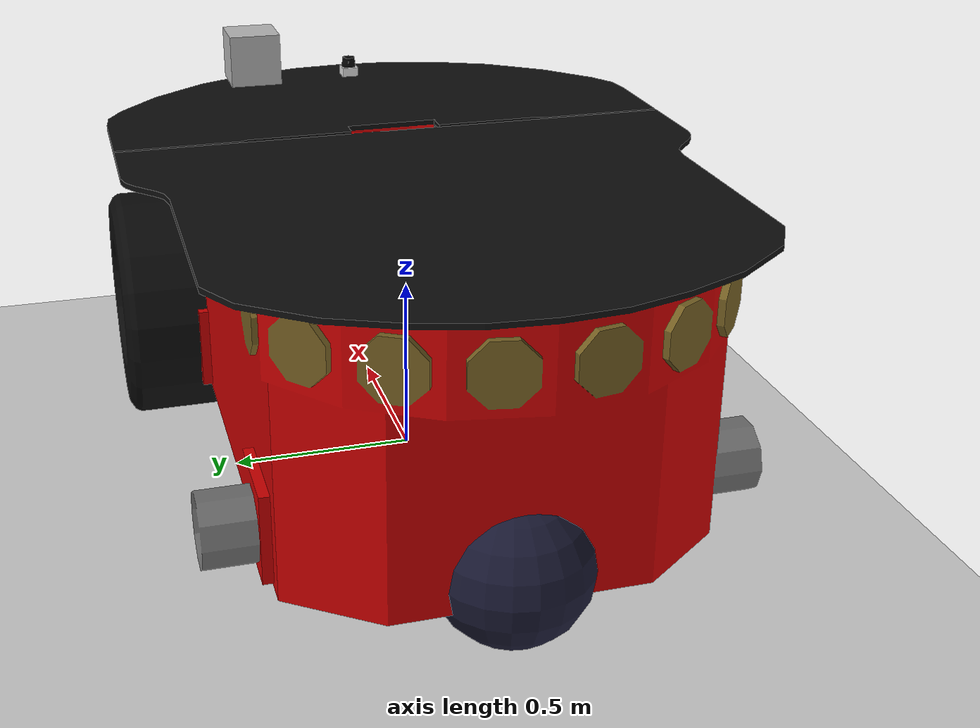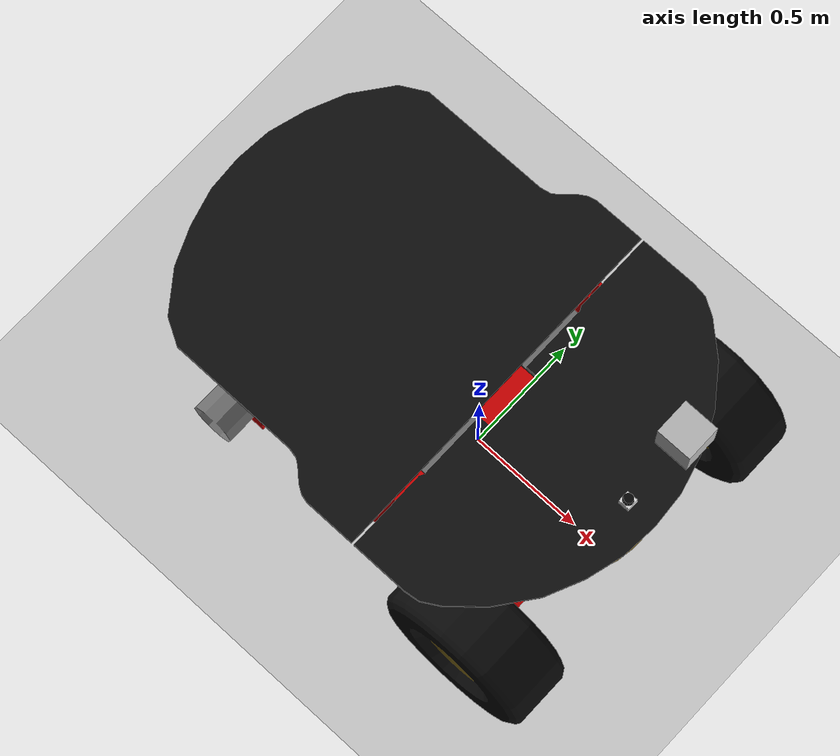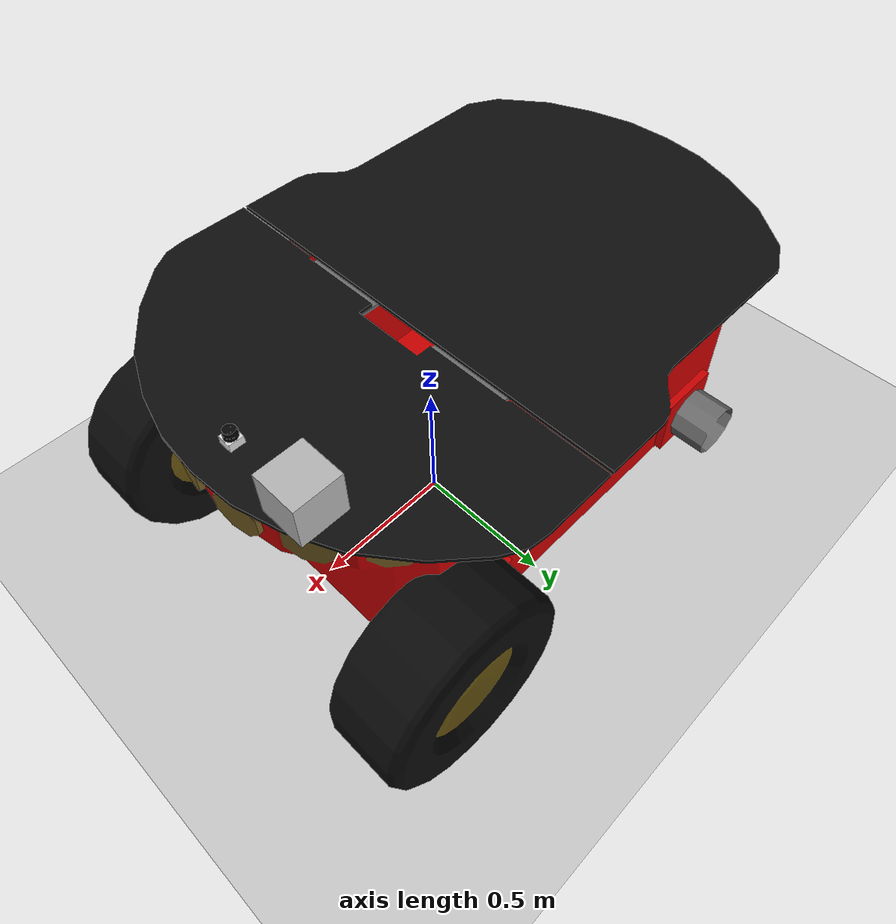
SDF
<?xml version="1.0"?>
<sdf version="1.6">
  <world name="default">

    <include>
      <uri>model://ground_plane</uri>
    </include>

    <include>
      <uri>model://sun</uri>
    </include>

    <model name='vehicle'>
      <pose>0 0 0.325 0 -0 0</pose>

      <link name='chassis'>
        <pose>-0.2 -0 0.2 0 -0 0</pose>
        <inertial>
          <mass>1.14395</mass>
          <inertia>
            <ixx>0.126164</ixx>
            <ixy>0</ixy>
            <ixz>0</ixz>
            <iyy>0.416519</iyy>
            <iyz>0</iyz>
            <izz>0.481014</izz>
          </inertia>
        </inertial>
        <visual name='visual'>
          <geometry>
            <mesh>
              <uri>model://pioneer3at/meshes/chassis.dae</uri>
              <scale>4 4 4</scale>
              <pose>0 0 7</pose>
            </mesh>
          </geometry>
        </visual>
        <collision name='collision'>
          <geometry>
            <box>
              <size>2.01142 1 0.568726</size>
            </box>
          </geometry>
        </collision>
      </link>

      <link name='left_wheel'>
        <pose>0.554283 0.625029 -0.025 -1.5707 0 0</pose>
        <inertial>
          <mass>2</mass>
          <inertia>
            <ixx>0.145833</ixx>
            <ixy>0</ixy>
            <ixz>0</ixz>
            <iyy>0.145833</iyy>
            <iyz>0</iyz>
            <izz>0.125</izz>
          </inertia>
        </inertial>
        <visual name='visual'>
          <geometry>
            <mesh>
              <uri>model://pioneer3at/meshes/wheel.dae</uri>
              <scale>3 3 3</scale>
            </mesh>
          </geometry>
        </visual>
        <collision name='collision'>
          <geometry>
            <sphere>
              <radius>0.3</radius>
            </sphere>
          </geometry>
          <surface>
            <friction>
              <ode>
                <mu>1</mu>
                <mu2>1</mu2>
                <slip1>0</slip1>
                <slip2>0</slip2>
              </ode>
            </friction>
            <contact>
              <ode>
                <soft_cfm>0</soft_cfm>
                <soft_erp>0.2</soft_erp>
                <kp>1e+13</kp>
                <kd>1</kd>
                <max_vel>0.01</max_vel>
                <min_depth>0.01</min_depth>
              </ode>
            </contact>
          </surface>
        </collision>
      </link>

      <link name='right_wheel'>
        <pose>0.554282 -0.625029 -0.025 -1.5707 0 0</pose>
        <inertial>
          <mass>2</mass>
          <inertia>
            <ixx>0.145833</ixx>
            <ixy>0</ixy>
            <ixz>0</ixz>
            <iyy>0.145833</iyy>
            <iyz>0</iyz>
            <izz>0.125</izz>
          </inertia>
        </inertial>
        <visual name='visual'>
          <geometry>
            <mesh>
              <uri>model://pioneer3at/meshes/wheel.dae</uri>
              <scale>3 3 3</scale>
            </mesh>
          </geometry>
        </visual>
        <collision name='collision'>
          <geometry>
            <sphere>
              <radius>0.3</radius>
            </sphere>
          </geometry>
          <surface>
            <friction>
              <ode>
                <mu>1</mu>
                <mu2>1</mu2>
                <slip1>0</slip1>
                <slip2>0</slip2>
              </ode>
            </friction>
            <contact>
              <ode>
                <soft_cfm>0</soft_cfm>
                <soft_erp>0.2</soft_erp>
                <kp>1e+13</kp>
                <kd>1</kd>
                <max_vel>0.01</max_vel>
                <min_depth>0.01</min_depth>
              </ode>
            </contact>
          </surface>
        </collision>
      </link>

      <link name='caster'>
        <pose>-0.957138 -0 -0.125 0 -0 0</pose>
        <inertial>
          <mass>1</mass>
          <inertia>
            <ixx>0.1</ixx>
            <ixy>0</ixy>
            <ixz>0</ixz>
            <iyy>0.1</iyy>
            <iyz>0</iyz>
            <izz>0.1</izz>
          </inertia>
        </inertial>
        <visual name='visual'>
         <material> <!-- Wheel material -->
          <ambient>0.1 0.1 0.1 1</ambient>
          <diffuse>0.1 0.1 0.2 1</diffuse>
          <specular>0 0 0 0</specular>
          <emissive>0 0 0 1</emissive>
        </material> <!-- End wheel material -->
          <geometry>
            <sphere>
              <radius>0.2</radius>
            </sphere>
          </geometry>
        </visual>
        <collision name='collision'>
          <geometry>
            <sphere>
              <radius>0.2</radius>
            </sphere>
          </geometry>
        </collision>
      </link>

      <!-- Add the laser range finder -->
            <link name="laser_link">
              <inertial>
                <!-- Mass of the laser range finder in kg -->
                <mass>0.1</mass>
              </inertial>
              <!-- Position is towards the front of the robot -->
              <!-- Laser finder is mounted on top -->
              <pose>0.7 0 0.62 0 0 0</pose>

              <!-- Add a mesh to make it more visually appealing -->
              <visual name="visual">
                <geometry>
                  <mesh>
                    <uri>model://hokuyo/meshes/hokuyo.dae</uri>
                  </mesh>
                </geometry>
              </visual>

              <!-- Collision properties of the base of the laser range finder-->
              <collision name="collision-base">
                <pose>0 0 -0.0145 0 0 0</pose>
                <geometry>
                  <box>
                    <size>0.05 0.05 0.041</size>
                  </box>
                </geometry>
              </collision>
              <!-- Collision properties of the top of the laser range finder-->
              <collision name="collision-top">
                <pose>0 0 0.0205 0 0 0</pose>
                <geometry>
                  <cylinder>
                    <radius>0.021</radius>
                    <length>0.029</length>
                  </cylinder>
                </geometry>
              </collision>

              <!-- Describes the type and properties of the sensor -->
        <sensor name="laser" type="ray">
          <pose>0.01 0 0.0175 0 -0 0</pose>
                <ray>
                  <scan>
                    <horizontal>
                      <samples>181</samples>
                      <resolution>1</resolution>
                      <min_angle>-1.57080</min_angle>
                      <max_angle>1.57080</max_angle>
                    </horizontal>
                  </scan>
                  <range>
                    <min>0.08</min>
                    <max>10</max>
                    <resolution>0.05</resolution>
                  </range>
                </ray>
                <always_on>1</always_on>
                <update_rate>10</update_rate>
                <visualize>true</visualize>

                <plugin name='laser' filename='libgazebo_ros_ray_sensor.so'>
                  <ros>
                    <namespace>/demo</namespace>
                    <argument>--ros-args --remap ~/out:=scan</argument>
                  </ros>
                  <output_type>sensor_msgs/LaserScan</output_type>
                </plugin>
        </sensor>
            </link>
        <!-- changes -->
        <!-- Camera -->
        <!-- changes -->

        <!-- camera -->
  <link name="camera_link">
  <collision name="collision-base">
          <pose>0 0 0 0 0 0</pose>
          <geometry>
            <box>
              <size>0.15 0.15 0.15</size>
            </box>
          </geometry>
        </collision>
        <pose>0.7 0.3 0.68 0 0 0</pose>

        <visual name="visual-base">
          <pose>0 0 0 0 0 0</pose>
          <geometry>
            <box>
              <size>0.15 0.15 0.15</size>
            </box>
          </geometry>
          <material>
            <name>red</name>
          </material>
        </visual>

        <inertial>
          <mass>1e-5</mass>
          <pose>0 0 0 0 0 0</pose>
          <inertia>
            <ixx>1e-6</ixx>
            <ixy>0</ixy>
            <ixz>0</ixz>
            <iyy>1e-6</iyy>
            <iyz>0</iyz>
            <izz>1e-6</izz>
          </inertia>
        </inertial>
    <sensor type="camera" name="camera1">
      <update_rate>30.0</update_rate>
      <camera name="head">
        <horizontal_fov>1.3962634</horizontal_fov>
        <image>
          <width>800</width>
          <height>800</height>
          <format>R8G8B8</format>
        </image>
        <clip>
          <near>0.02</near>
          <far>300</far>
        </clip>
        <noise>
          <type>gaussian</type>
          <!-- Noise is sampled independently per pixel on each frame.
               That pixel's noise value is added to each of its color
               channels, which at that point lie in the range [0,1]. -->
          <mean>0.0</mean>
          <stddev>0.007</stddev>
        </noise>
      </camera>
      <plugin name="camera_controller" filename="libgazebo_ros_camera.so">
        <alwaysOn>true</alwaysOn>
        <updateRate>0.0</updateRate>
        <cameraName>rrbot/camera1</cameraName>
        <imageTopicName>image_raw</imageTopicName>
        <cameraInfoTopicName>camera_info</cameraInfoTopicName>
        <frameName>camera_link</frameName>
        <hackBaseline>0.07</hackBaseline>
        <distortionK1>0.0</distortionK1>
        <distortionK2>0.0</distortionK2>
        <distortionK3>0.0</distortionK3>
        <distortionT1>0.0</distortionT1>
        <distortionT2>0.0</distortionT2>
      </plugin>
    </sensor>
  </link>

      <joint name='left_wheel_joint' type='revolute'>
        <parent>chassis</parent>
        <child>left_wheel</child>
        <axis>
          <xyz>0 0 1</xyz>
          <limit>
            <lower>-1.79769e+308</lower>
            <upper>1.79769e+308</upper>
          </limit>
        </axis>
      </joint>

      <joint name='right_wheel_joint' type='revolute'>
        <parent>chassis</parent>
        <child>right_wheel</child>
        <axis>
          <xyz>0 0 1</xyz>
          <limit>
            <lower>-1.79769e+308</lower>
            <upper>1.79769e+308</upper>
          </limit>
        </axis>
      </joint>

      <joint name='caster_wheel' type='ball'>
        <parent>chassis</parent>
        <child>caster</child>
      </joint>

      <joint name="laser_joint" type="fixed">
        <child>laser_link</child>
        <parent>chassis</parent>
      </joint>

      <joint name="camera_joint" type="fixed">
        <axis>
          <xyz>0 1 0</xyz>
        </axis>
        <pose>1 0 2 0 0 0</pose>
        <parent>chassis</parent>
        <child>camera_link</child>
      </joint>

      <plugin name='diff_drive' filename='libgazebo_ros_diff_drive.so'>

        <ros>
          <namespace>/demo</namespace>
          <remapping>cmd_vel:=cmd_demo</remapping>
          <remapping>odom:=odom_demo</remapping>
        </ros>

        <!-- wheels -->
        <left_joint>left_wheel_joint</left_joint>
        <right_joint>right_wheel_joint</right_joint>

        <!-- kinematics -->
        <wheel_separation>1.25</wheel_separation>
        <wheel_diameter>0.6</wheel_diameter>

        <!-- limits -->
        <max_wheel_torque>20</max_wheel_torque>
        <max_wheel_acceleration>1.0</max_wheel_acceleration>

        <!-- output -->
        <publish_odom>true</publish_odom>
        <publish_odom_tf>true</publish_odom_tf>
        <publish_wheel_tf>true</publish_wheel_tf>

        <odometry_frame>odom_demo</odometry_frame>
        <robot_base_frame>chassis</robot_base_frame>

      </plugin>

    </model>

  </world>
</sdf>
